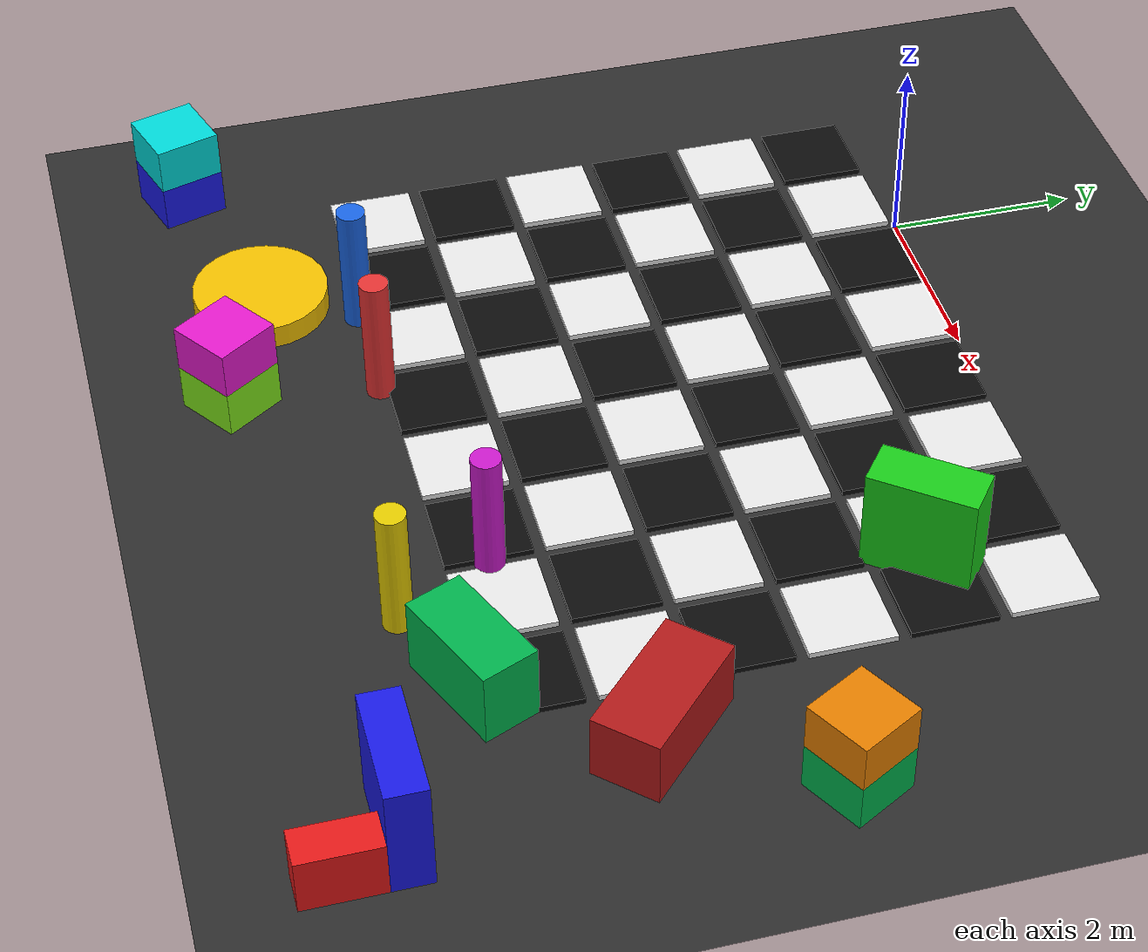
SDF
<sdf version="1.9">
 <world name="slam_world_realistic">
  <model name="ground_plane">
   <static>true</static>
   <link name="ground_link">
    <collision name="collision">
     <geometry><plane><normal>0 0 1</normal><size>80 80</size></plane></geometry>
    </collision>
    <visual name="visual">
     <geometry><plane><normal>0 0 1</normal><size>80 80</size></plane></geometry>
     <material>
      <ambient>0.15 0.15 0.15 1</ambient>
      <diffuse>0.18 0.18 0.18 1</diffuse>
      <specular>0.02 0.02 0.02 1</specular>
     </material>
    </visual>
   </link>
  </model>
  <model name="cb_48">
   <static>true</static>
   <pose>-1.500 -5.500 0.03 0 0 0</pose>
   <link name="link">
    <collision name="col"><geometry><box><size>0.88 0.88 0.06</size></box></geometry></collision>
    <visual name="vis">
     <geometry><box><size>0.88 0.88 0.06</size></box></geometry>
     <material>
      <ambient>0.910 0.910 0.910 1</ambient>
      <diffuse>0.910 0.910 0.910 1</diffuse>
      <specular>0.080 0.080 0.080 1</specular>
     </material>
    </visual>
   </link>
  </model>
  <model name="cb_49">
   <static>true</static>
   <pose>-1.500 -4.500 0.03 0 0 0</pose>
   <link name="link">
    <collision name="col"><geometry><box><size>0.88 0.88 0.06</size></box></geometry></collision>
    <visual name="vis">
     <geometry><box><size>0.88 0.88 0.06</size></box></geometry>
     <material>
      <ambient>0.050 0.050 0.050 1</ambient>
      <diffuse>0.050 0.050 0.050 1</diffuse>
      <specular>0.020 0.020 0.020 1</specular>
     </material>
    </visual>
   </link>
  </model>
  <model name="cb_50">
   <static>true</static>
   <pose>-1.500 -3.500 0.03 0 0 0</pose>
   <link name="link">
    <collision name="col"><geometry><box><size>0.88 0.88 0.06</size></box></geometry></collision>
    <visual name="vis">
     <geometry><box><size>0.88 0.88 0.06</size></box></geometry>
     <material>
      <ambient>0.910 0.910 0.910 1</ambient>
      <diffuse>0.910 0.910 0.910 1</diffuse>
      <specular>0.080 0.080 0.080 1</specular>
     </material>
    </visual>
   </link>
  </model>
  <model name="cb_51">
   <static>true</static>
   <pose>-1.500 -2.500 0.03 0 0 0</pose>
   <link name="link">
    <collision name="col"><geometry><box><size>0.88 0.88 0.06</size></box></geometry></collision>
    <visual name="vis">
     <geometry><box><size>0.88 0.88 0.06</size></box></geometry>
     <material>
      <ambient>0.050 0.050 0.050 1</ambient>
      <diffuse>0.050 0.050 0.050 1</diffuse>
      <specular>0.020 0.020 0.020 1</specular>
     </material>
    </visual>
   </link>
  </model>
  <model name="cb_52">
   <static>true</static>
   <pose>-1.500 -1.500 0.03 0 0 0</pose>
   <link name="link">
    <collision name="col"><geometry><box><size>0.88 0.88 0.06</size></box></geometry></collision>
    <visual name="vis">
     <geometry><box><size>0.88 0.88 0.06</size></box></geometry>
     <material>
      <ambient>0.910 0.910 0.910 1</ambient>
      <diffuse>0.910 0.910 0.910 1</diffuse>
      <specular>0.080 0.080 0.080 1</specular>
     </material>
    </visual>
   </link>
  </model>
  <model name="cb_53">
   <static>true</static>
   <pose>-1.500 -0.500 0.03 0 0 0</pose>
   <link name="link">
    <collision name="col"><geometry><box><size>0.88 0.88 0.06</size></box></geometry></collision>
    <visual name="vis">
     <geometry><box><size>0.88 0.88 0.06</size></box></geometry>
     <material>
      <ambient>0.050 0.050 0.050 1</ambient>
      <diffuse>0.050 0.050 0.050 1</diffuse>
      <specular>0.020 0.020 0.020 1</specular>
     </material>
    </visual>
   </link>
  </model>
  <model name="cb_60">
   <static>true</static>
   <pose>-0.500 -5.500 0.03 0 0 0</pose>
   <link name="link">
    <collision name="col"><geometry><box><size>0.88 0.88 0.06</size></box></geometry></collision>
    <visual name="vis">
     <geometry><box><size>0.88 0.88 0.06</size></box></geometry>
     <material>
      <ambient>0.050 0.050 0.050 1</ambient>
      <diffuse>0.050 0.050 0.050 1</diffuse>
      <specular>0.020 0.020 0.020 1</specular>
     </material>
    </visual>
   </link>
  </model>
  <model name="cb_61">
   <static>true</static>
   <pose>-0.500 -4.500 0.03 0 0 0</pose>
   <link name="link">
    <collision name="col"><geometry><box><size>0.88 0.88 0.06</size></box></geometry></collision>
    <visual name="vis">
     <geometry><box><size>0.88 0.88 0.06</size></box></geometry>
     <material>
      <ambient>0.910 0.910 0.910 1</ambient>
      <diffuse>0.910 0.910 0.910 1</diffuse>
      <specular>0.080 0.080 0.080 1</specular>
     </material>
    </visual>
   </link>
  </model>
  <model name="cb_62">
   <static>true</static>
   <pose>-0.500 -3.500 0.03 0 0 0</pose>
   <link name="link">
    <collision name="col"><geometry><box><size>0.88 0.88 0.06</size></box></geometry></collision>
    <visual name="vis">
     <geometry><box><size>0.88 0.88 0.06</size></box></geometry>
     <material>
      <ambient>0.050 0.050 0.050 1</ambient>
      <diffuse>0.050 0.050 0.050 1</diffuse>
      <specular>0.020 0.020 0.020 1</specular>
     </material>
    </visual>
   </link>
  </model>
  <model name="cb_63">
   <static>true</static>
   <pose>-0.500 -2.500 0.03 0 0 0</pose>
   <link name="link">
    <collision name="col"><geometry><box><size>0.88 0.88 0.06</size></box></geometry></collision>
    <visual name="vis">
     <geometry><box><size>0.88 0.88 0.06</size></box></geometry>
     <material>
      <ambient>0.910 0.910 0.910 1</ambient>
      <diffuse>0.910 0.910 0.910 1</diffuse>
      <specular>0.080 0.080 0.080 1</specular>
     </material>
    </visual>
   </link>
  </model>
  <model name="cb_64">
   <static>true</static>
   <pose>-0.500 -1.500 0.03 0 0 0</pose>
   <link name="link">
    <collision name="col"><geometry><box><size>0.88 0.88 0.06</size></box></geometry></collision>
    <visual name="vis">
     <geometry><box><size>0.88 0.88 0.06</size></box></geometry>
     <material>
      <ambient>0.050 0.050 0.050 1</ambient>
      <diffuse>0.050 0.050 0.050 1</diffuse>
      <specular>0.020 0.020 0.020 1</specular>
     </material>
    </visual>
   </link>
  </model>
  <model name="cb_65">
   <static>true</static>
   <pose>-0.500 -0.500 0.03 0 0 0</pose>
   <link name="link">
    <collision name="col"><geometry><box><size>0.88 0.88 0.06</size></box></geometry></collision>
    <visual name="vis">
     <geometry><box><size>0.88 0.88 0.06</size></box></geometry>
     <material>
      <ambient>0.910 0.910 0.910 1</ambient>
      <diffuse>0.910 0.910 0.910 1</diffuse>
      <specular>0.080 0.080 0.080 1</specular>
     </material>
    </visual>
   </link>
  </model>
  <model name="cb_72">
   <static>true</static>
   <pose>0.500 -5.500 0.03 0 0 0</pose>
   <link name="link">
    <collision name="col"><geometry><box><size>0.88 0.88 0.06</size></box></geometry></collision>
    <visual name="vis">
     <geometry><box><size>0.88 0.88 0.06</size></box></geometry>
     <material>
      <ambient>0.910 0.910 0.910 1</ambient>
      <diffuse>0.910 0.910 0.910 1</diffuse>
      <specular>0.080 0.080 0.080 1</specular>
     </material>
    </visual>
   </link>
  </model>
  <model name="cb_73">
   <static>true</static>
   <pose>0.500 -4.500 0.03 0 0 0</pose>
   <link name="link">
    <collision name="col"><geometry><box><size>0.88 0.88 0.06</size></box></geometry></collision>
    <visual name="vis">
     <geometry><box><size>0.88 0.88 0.06</size></box></geometry>
     <material>
      <ambient>0.050 0.050 0.050 1</ambient>
      <diffuse>0.050 0.050 0.050 1</diffuse>
      <specular>0.020 0.020 0.020 1</specular>
     </material>
    </visual>
   </link>
  </model>
  <model name="cb_74">
   <static>true</static>
   <pose>0.500 -3.500 0.03 0 0 0</pose>
   <link name="link">
    <collision name="col"><geometry><box><size>0.88 0.88 0.06</size></box></geometry></collision>
    <visual name="vis">
     <geometry><box><size>0.88 0.88 0.06</size></box></geometry>
     <material>
      <ambient>0.910 0.910 0.910 1</ambient>
      <diffuse>0.910 0.910 0.910 1</diffuse>
      <specular>0.080 0.080 0.080 1</specular>
     </material>
    </visual>
   </link>
  </model>
  <model name="cb_75">
   <static>true</static>
   <pose>0.500 -2.500 0.03 0 0 0</pose>
   <link name="link">
    <collision name="col"><geometry><box><size>0.88 0.88 0.06</size></box></geometry></collision>
    <visual name="vis">
     <geometry><box><size>0.88 0.88 0.06</size></box></geometry>
     <material>
      <ambient>0.050 0.050 0.050 1</ambient>
      <diffuse>0.050 0.050 0.050 1</diffuse>
      <specular>0.020 0.020 0.020 1</specular>
     </material>
    </visual>
   </link>
  </model>
  <model name="cb_76">
   <static>true</static>
   <pose>0.500 -1.500 0.03 0 0 0</pose>
   <link name="link">
    <collision name="col"><geometry><box><size>0.88 0.88 0.06</size></box></geometry></collision>
    <visual name="vis">
     <geometry><box><size>0.88 0.88 0.06</size></box></geometry>
     <material>
      <ambient>0.910 0.910 0.910 1</ambient>
      <diffuse>0.910 0.910 0.910 1</diffuse>
      <specular>0.080 0.080 0.080 1</specular>
     </material>
    </visual>
   </link>
  </model>
  <model name="cb_77">
   <static>true</static>
   <pose>0.500 -0.500 0.03 0 0 0</pose>
   <link name="link">
    <collision name="col"><geometry><box><size>0.88 0.88 0.06</size></box></geometry></collision>
    <visual name="vis">
     <geometry><box><size>0.88 0.88 0.06</size></box></geometry>
     <material>
      <ambient>0.050 0.050 0.050 1</ambient>
      <diffuse>0.050 0.050 0.050 1</diffuse>
      <specular>0.020 0.020 0.020 1</specular>
     </material>
    </visual>
   </link>
  </model>
  <model name="cb_84">
   <static>true</static>
   <pose>1.500 -5.500 0.03 0 0 0</pose>
   <link name="link">
    <collision name="col"><geometry><box><size>0.88 0.88 0.06</size></box></geometry></collision>
    <visual name="vis">
     <geometry><box><size>0.88 0.88 0.06</size></box></geometry>
     <material>
      <ambient>0.050 0.050 0.050 1</ambient>
      <diffuse>0.050 0.050 0.050 1</diffuse>
      <specular>0.020 0.020 0.020 1</specular>
     </material>
    </visual>
   </link>
  </model>
  <model name="cb_85">
   <static>true</static>
   <pose>1.500 -4.500 0.03 0 0 0</pose>
   <link name="link">
    <collision name="col"><geometry><box><size>0.88 0.88 0.06</size></box></geometry></collision>
    <visual name="vis">
     <geometry><box><size>0.88 0.88 0.06</size></box></geometry>
     <material>
      <ambient>0.910 0.910 0.910 1</ambient>
      <diffuse>0.910 0.910 0.910 1</diffuse>
      <specular>0.080 0.080 0.080 1</specular>
     </material>
    </visual>
   </link>
  </model>
  <model name="cb_86">
   <static>true</static>
   <pose>1.500 -3.500 0.03 0 0 0</pose>
   <link name="link">
    <collision name="col"><geometry><box><size>0.88 0.88 0.06</size></box></geometry></collision>
    <visual name="vis">
     <geometry><box><size>0.88 0.88 0.06</size></box></geometry>
     <material>
      <ambient>0.050 0.050 0.050 1</ambient>
      <diffuse>0.050 0.050 0.050 1</diffuse>
      <specular>0.020 0.020 0.020 1</specular>
     </material>
    </visual>
   </link>
  </model>
  <model name="cb_87">
   <static>true</static>
   <pose>1.500 -2.500 0.03 0 0 0</pose>
   <link name="link">
    <collision name="col"><geometry><box><size>0.88 0.88 0.06</size></box></geometry></collision>
    <visual name="vis">
     <geometry><box><size>0.88 0.88 0.06</size></box></geometry>
     <material>
      <ambient>0.910 0.910 0.910 1</ambient>
      <diffuse>0.910 0.910 0.910 1</diffuse>
      <specular>0.080 0.080 0.080 1</specular>
     </material>
    </visual>
   </link>
  </model>
  <model name="cb_88">
   <static>true</static>
   <pose>1.500 -1.500 0.03 0 0 0</pose>
   <link name="link">
    <collision name="col"><geometry><box><size>0.88 0.88 0.06</size></box></geometry></collision>
    <visual name="vis">
     <geometry><box><size>0.88 0.88 0.06</size></box></geometry>
     <material>
      <ambient>0.050 0.050 0.050 1</ambient>
      <diffuse>0.050 0.050 0.050 1</diffuse>
      <specular>0.020 0.020 0.020 1</specular>
     </material>
    </visual>
   </link>
  </model>
  <model name="cb_89">
   <static>true</static>
   <pose>1.500 -0.500 0.03 0 0 0</pose>
   <link name="link">
    <collision name="col"><geometry><box><size>0.88 0.88 0.06</size></box></geometry></collision>
    <visual name="vis">
     <geometry><box><size>0.88 0.88 0.06</size></box></geometry>
     <material>
      <ambient>0.910 0.910 0.910 1</ambient>
      <diffuse>0.910 0.910 0.910 1</diffuse>
      <specular>0.080 0.080 0.080 1</specular>
     </material>
    </visual>
   </link>
  </model>
  <model name="cb_96">
   <static>true</static>
   <pose>2.500 -5.500 0.03 0 0 0</pose>
   <link name="link">
    <collision name="col"><geometry><box><size>0.88 0.88 0.06</size></box></geometry></collision>
    <visual name="vis">
     <geometry><box><size>0.88 0.88 0.06</size></box></geometry>
     <material>
      <ambient>0.910 0.910 0.910 1</ambient>
      <diffuse>0.910 0.910 0.910 1</diffuse>
      <specular>0.080 0.080 0.080 1</specular>
     </material>
    </visual>
   </link>
  </model>
  <model name="cb_97">
   <static>true</static>
   <pose>2.500 -4.500 0.03 0 0 0</pose>
   <link name="link">
    <collision name="col"><geometry><box><size>0.88 0.88 0.06</size></box></geometry></collision>
    <visual name="vis">
     <geometry><box><size>0.88 0.88 0.06</size></box></geometry>
     <material>
      <ambient>0.050 0.050 0.050 1</ambient>
      <diffuse>0.050 0.050 0.050 1</diffuse>
      <specular>0.020 0.020 0.020 1</specular>
     </material>
    </visual>
   </link>
  </model>
  <model name="cb_98">
   <static>true</static>
   <pose>2.500 -3.500 0.03 0 0 0</pose>
   <link name="link">
    <collision name="col"><geometry><box><size>0.88 0.88 0.06</size></box></geometry></collision>
    <visual name="vis">
     <geometry><box><size>0.88 0.88 0.06</size></box></geometry>
     <material>
      <ambient>0.910 0.910 0.910 1</ambient>
      <diffuse>0.910 0.910 0.910 1</diffuse>
      <specular>0.080 0.080 0.080 1</specular>
     </material>
    </visual>
   </link>
  </model>
  <model name="cb_99">
   <static>true</static>
   <pose>2.500 -2.500 0.03 0 0 0</pose>
   <link name="link">
    <collision name="col"><geometry><box><size>0.88 0.88 0.06</size></box></geometry></collision>
    <visual name="vis">
     <geometry><box><size>0.88 0.88 0.06</size></box></geometry>
     <material>
      <ambient>0.050 0.050 0.050 1</ambient>
      <diffuse>0.050 0.050 0.050 1</diffuse>
      <specular>0.020 0.020 0.020 1</specular>
     </material>
    </visual>
   </link>
  </model>
  <model name="cb_100">
   <static>true</static>
   <pose>2.500 -1.500 0.03 0 0 0</pose>
   <link name="link">
    <collision name="col"><geometry><box><size>0.88 0.88 0.06</size></box></geometry></collision>
    <visual name="vis">
     <geometry><box><size>0.88 0.88 0.06</size></box></geometry>
     <material>
      <ambient>0.910 0.910 0.910 1</ambient>
      <diffuse>0.910 0.910 0.910 1</diffuse>
      <specular>0.080 0.080 0.080 1</specular>
     </material>
    </visual>
   </link>
  </model>
  <model name="cb_101">
   <static>true</static>
   <pose>2.500 -0.500 0.03 0 0 0</pose>
   <link name="link">
    <collision name="col"><geometry><box><size>0.88 0.88 0.06</size></box></geometry></collision>
    <visual name="vis">
     <geometry><box><size>0.88 0.88 0.06</size></box></geometry>
     <material>
      <ambient>0.050 0.050 0.050 1</ambient>
      <diffuse>0.050 0.050 0.050 1</diffuse>
      <specular>0.020 0.020 0.020 1</specular>
     </material>
    </visual>
   </link>
  </model>
  <model name="cb_108">
   <static>true</static>
   <pose>3.500 -5.500 0.03 0 0 0</pose>
   <link name="link">
    <collision name="col"><geometry><box><size>0.88 0.88 0.06</size></box></geometry></collision>
    <visual name="vis">
     <geometry><box><size>0.88 0.88 0.06</size></box></geometry>
     <material>
      <ambient>0.050 0.050 0.050 1</ambient>
      <diffuse>0.050 0.050 0.050 1</diffuse>
      <specular>0.020 0.020 0.020 1</specular>
     </material>
    </visual>
   </link>
  </model>
  <model name="cb_109">
   <static>true</static>
   <pose>3.500 -4.500 0.03 0 0 0</pose>
   <link name="link">
    <collision name="col"><geometry><box><size>0.88 0.88 0.06</size></box></geometry></collision>
    <visual name="vis">
     <geometry><box><size>0.88 0.88 0.06</size></box></geometry>
     <material>
      <ambient>0.910 0.910 0.910 1</ambient>
      <diffuse>0.910 0.910 0.910 1</diffuse>
      <specular>0.080 0.080 0.080 1</specular>
     </material>
    </visual>
   </link>
  </model>
  <model name="cb_110">
   <static>true</static>
   <pose>3.500 -3.500 0.03 0 0 0</pose>
   <link name="link">
    <collision name="col"><geometry><box><size>0.88 0.88 0.06</size></box></geometry></collision>
    <visual name="vis">
     <geometry><box><size>0.88 0.88 0.06</size></box></geometry>
     <material>
      <ambient>0.050 0.050 0.050 1</ambient>
      <diffuse>0.050 0.050 0.050 1</diffuse>
      <specular>0.020 0.020 0.020 1</specular>
     </material>
    </visual>
   </link>
  </model>
  <model name="cb_111">
   <static>true</static>
   <pose>3.500 -2.500 0.03 0 0 0</pose>
   <link name="link">
    <collision name="col"><geometry><box><size>0.88 0.88 0.06</size></box></geometry></collision>
    <visual name="vis">
     <geometry><box><size>0.88 0.88 0.06</size></box></geometry>
     <material>
      <ambient>0.910 0.910 0.910 1</ambient>
      <diffuse>0.910 0.910 0.910 1</diffuse>
      <specular>0.080 0.080 0.080 1</specular>
     </material>
    </visual>
   </link>
  </model>
  <model name="cb_112">
   <static>true</static>
   <pose>3.500 -1.500 0.03 0 0 0</pose>
   <link name="link">
    <collision name="col"><geometry><box><size>0.88 0.88 0.06</size></box></geometry></collision>
    <visual name="vis">
     <geometry><box><size>0.88 0.88 0.06</size></box></geometry>
     <material>
      <ambient>0.050 0.050 0.050 1</ambient>
      <diffuse>0.050 0.050 0.050 1</diffuse>
      <specular>0.020 0.020 0.020 1</specular>
     </material>
    </visual>
   </link>
  </model>
  <model name="cb_113">
   <static>true</static>
   <pose>3.500 -0.500 0.03 0 0 0</pose>
   <link name="link">
    <collision name="col"><geometry><box><size>0.88 0.88 0.06</size></box></geometry></collision>
    <visual name="vis">
     <geometry><box><size>0.88 0.88 0.06</size></box></geometry>
     <material>
      <ambient>0.910 0.910 0.910 1</ambient>
      <diffuse>0.910 0.910 0.910 1</diffuse>
      <specular>0.080 0.080 0.080 1</specular>
     </material>
    </visual>
   </link>
  </model>
  <model name="cb_120">
   <static>true</static>
   <pose>4.500 -5.500 0.03 0 0 0</pose>
   <link name="link">
    <collision name="col"><geometry><box><size>0.88 0.88 0.06</size></box></geometry></collision>
    <visual name="vis">
     <geometry><box><size>0.88 0.88 0.06</size></box></geometry>
     <material>
      <ambient>0.910 0.910 0.910 1</ambient>
      <diffuse>0.910 0.910 0.910 1</diffuse>
      <specular>0.080 0.080 0.080 1</specular>
     </material>
    </visual>
   </link>
  </model>
  <model name="cb_121">
   <static>true</static>
   <pose>4.500 -4.500 0.03 0 0 0</pose>
   <link name="link">
    <collision name="col"><geometry><box><size>0.88 0.88 0.06</size></box></geometry></collision>
    <visual name="vis">
     <geometry><box><size>0.88 0.88 0.06</size></box></geometry>
     <material>
      <ambient>0.050 0.050 0.050 1</ambient>
      <diffuse>0.050 0.050 0.050 1</diffuse>
      <specular>0.020 0.020 0.020 1</specular>
     </material>
    </visual>
   </link>
  </model>
  <model name="cb_122">
   <static>true</static>
   <pose>4.500 -3.500 0.03 0 0 0</pose>
   <link name="link">
    <collision name="col"><geometry><box><size>0.88 0.88 0.06</size></box></geometry></collision>
    <visual name="vis">
     <geometry><box><size>0.88 0.88 0.06</size></box></geometry>
     <material>
      <ambient>0.910 0.910 0.910 1</ambient>
      <diffuse>0.910 0.910 0.910 1</diffuse>
      <specular>0.080 0.080 0.080 1</specular>
     </material>
    </visual>
   </link>
  </model>
  <model name="cb_123">
   <static>true</static>
   <pose>4.500 -2.500 0.03 0 0 0</pose>
   <link name="link">
    <collision name="col"><geometry><box><size>0.88 0.88 0.06</size></box></geometry></collision>
    <visual name="vis">
     <geometry><box><size>0.88 0.88 0.06</size></box></geometry>
     <material>
      <ambient>0.050 0.050 0.050 1</ambient>
      <diffuse>0.050 0.050 0.050 1</diffuse>
      <specular>0.020 0.020 0.020 1</specular>
     </material>
    </visual>
   </link>
  </model>
  <model name="cb_124">
   <static>true</static>
   <pose>4.500 -1.500 0.03 0 0 0</pose>
   <link name="link">
    <collision name="col"><geometry><box><size>0.88 0.88 0.06</size></box></geometry></collision>
    <visual name="vis">
     <geometry><box><size>0.88 0.88 0.06</size></box></geometry>
     <material>
      <ambient>0.910 0.910 0.910 1</ambient>
      <diffuse>0.910 0.910 0.910 1</diffuse>
      <specular>0.080 0.080 0.080 1</specular>
     </material>
    </visual>
   </link>
  </model>
  <model name="cb_125">
   <static>true</static>
   <pose>4.500 -0.500 0.03 0 0 0</pose>
   <link name="link">
    <collision name="col"><geometry><box><size>0.88 0.88 0.06</size></box></geometry></collision>
    <visual name="vis">
     <geometry><box><size>0.88 0.88 0.06</size></box></geometry>
     <material>
      <ambient>0.050 0.050 0.050 1</ambient>
      <diffuse>0.050 0.050 0.050 1</diffuse>
      <specular>0.020 0.020 0.020 1</specular>
     </material>
    </visual>
   </link>
  </model>
  <model name="cb_132">
   <static>true</static>
   <pose>5.500 -5.500 0.03 0 0 0</pose>
   <link name="link">
    <collision name="col"><geometry><box><size>0.88 0.88 0.06</size></box></geometry></collision>
    <visual name="vis">
     <geometry><box><size>0.88 0.88 0.06</size></box></geometry>
     <material>
      <ambient>0.050 0.050 0.050 1</ambient>
      <diffuse>0.050 0.050 0.050 1</diffuse>
      <specular>0.020 0.020 0.020 1</specular>
     </material>
    </visual>
   </link>
  </model>
  <model name="cb_133">
   <static>true</static>
   <pose>5.500 -4.500 0.03 0 0 0</pose>
   <link name="link">
    <collision name="col"><geometry><box><size>0.88 0.88 0.06</size></box></geometry></collision>
    <visual name="vis">
     <geometry><box><size>0.88 0.88 0.06</size></box></geometry>
     <material>
      <ambient>0.910 0.910 0.910 1</ambient>
      <diffuse>0.910 0.910 0.910 1</diffuse>
      <specular>0.080 0.080 0.080 1</specular>
     </material>
    </visual>
   </link>
  </model>
  <model name="cb_134">
   <static>true</static>
   <pose>5.500 -3.500 0.03 0 0 0</pose>
   <link name="link">
    <collision name="col"><geometry><box><size>0.88 0.88 0.06</size></box></geometry></collision>
    <visual name="vis">
     <geometry><box><size>0.88 0.88 0.06</size></box></geometry>
     <material>
      <ambient>0.050 0.050 0.050 1</ambient>
      <diffuse>0.050 0.050 0.050 1</diffuse>
      <specular>0.020 0.020 0.020 1</specular>
     </material>
    </visual>
   </link>
  </model>
  <model name="cb_135">
   <static>true</static>
   <pose>5.500 -2.500 0.03 0 0 0</pose>
   <link name="link">
    <collision name="col"><geometry><box><size>0.88 0.88 0.06</size></box></geometry></collision>
    <visual name="vis">
     <geometry><box><size>0.88 0.88 0.06</size></box></geometry>
     <material>
      <ambient>0.910 0.910 0.910 1</ambient>
      <diffuse>0.910 0.910 0.910 1</diffuse>
      <specular>0.080 0.080 0.080 1</specular>
     </material>
    </visual>
   </link>
  </model>
  <model name="cb_136">
   <static>true</static>
   <pose>5.500 -1.500 0.03 0 0 0</pose>
   <link name="link">
    <collision name="col"><geometry><box><size>0.88 0.88 0.06</size></box></geometry></collision>
    <visual name="vis">
     <geometry><box><size>0.88 0.88 0.06</size></box></geometry>
     <material>
      <ambient>0.050 0.050 0.050 1</ambient>
      <diffuse>0.050 0.050 0.050 1</diffuse>
      <specular>0.020 0.020 0.020 1</specular>
     </material>
    </visual>
   </link>
  </model>
  <model name="cb_137">
   <static>true</static>
   <pose>5.500 -0.500 0.03 0 0 0</pose>
   <link name="link">
    <collision name="col"><geometry><box><size>0.88 0.88 0.06</size></box></geometry></collision>
    <visual name="vis">
     <geometry><box><size>0.88 0.88 0.06</size></box></geometry>
     <material>
      <ambient>0.910 0.910 0.910 1</ambient>
      <diffuse>0.910 0.910 0.910 1</diffuse>
      <specular>0.080 0.080 0.080 1</specular>
     </material>
    </visual>
   </link>
  </model>
  <model name="pillar_2">
   <static>true</static>
   <pose>0.00 -6.00 0.70 0 0 0</pose>
   <link name="link">
    <collision name="col">
     <geometry><cylinder><radius>0.15</radius><length>1.4</length></cylinder></geometry>
    </collision>
    <visual name="vis">
     <geometry><cylinder><radius>0.15</radius><length>1.4</length></cylinder></geometry>
     <material>
      <ambient>0.10 0.40 0.90 1</ambient>
      <diffuse>0.10 0.40 0.90 1</diffuse>
      <specular>0.30 0.30 0.30 1</specular>
     </material>
    </visual>
   </link>
  </model>
  <model name="pillar_4">
   <static>true</static>
   <pose>4.00 -5.50 0.70 0 0 0</pose>
   <link name="link">
    <collision name="col">
     <geometry><cylinder><radius>0.15</radius><length>1.4</length></cylinder></geometry>
    </collision>
    <visual name="vis">
     <geometry><cylinder><radius>0.15</radius><length>1.4</length></cylinder></geometry>
     <material>
      <ambient>0.80 0.10 0.80 1</ambient>
      <diffuse>0.80 0.10 0.80 1</diffuse>
      <specular>0.35 0.35 0.35 1</specular>
     </material>
    </visual>
   </link>
  </model>
  <model name="pillar_6">
   <static>true</static>
   <pose>1.20 -6.00 0.70 0 0 0</pose>
   <link name="link">
    <collision name="col">
     <geometry><cylinder><radius>0.15</radius><length>1.4</length></cylinder></geometry>
    </collision>
    <visual name="vis">
     <geometry><cylinder><radius>0.15</radius><length>1.4</length></cylinder></geometry>
     <material>
      <ambient>0.90 0.20 0.20 1</ambient>
      <diffuse>0.90 0.20 0.20 1</diffuse>
      <specular>0.30 0.30 0.30 1</specular>
     </material>
    </visual>
   </link>
  </model>
  <model name="pillar_10">
   <static>true</static>
   <pose>4.50 -6.50 0.70 0 0 0</pose>
   <link name="link">
    <collision name="col">
     <geometry><cylinder><radius>0.15</radius><length>1.4</length></cylinder></geometry>
    </collision>
    <visual name="vis">
     <geometry><cylinder><radius>0.15</radius><length>1.4</length></cylinder></geometry>
     <material>
      <ambient>0.90 0.80 0.00 1</ambient>
      <diffuse>0.90 0.80 0.00 1</diffuse>
      <specular>0.30 0.30 0.30 1</specular>
     </material>
    </visual>
   </link>
  </model>
  <model name="fat_cyl_2">
   <static>true</static>
   <pose>0.00 -7.00 0.50 0 0 0</pose>
   <link name="link">
    <collision name="col">
     <geometry><cylinder><radius>0.7</radius><length>0.25</length></cylinder></geometry>
    </collision>
    <visual name="vis">
     <geometry><cylinder><radius>0.7</radius><length>0.25</length></cylinder></geometry>
     <material>
      <ambient>0.95 0.75 0.00 1</ambient>
      <diffuse>0.95 0.75 0.00 1</diffuse>
      <specular>0.30 0.30 0.30 1</specular>
     </material>
    </visual>
   </link>
  </model>
  <model name="mbox_2">
   <static>true</static>
   <pose>5.50 -6.00 0.40 0 0 0.40</pose>
   <link name="link">
    <collision name="col"><geometry><box><size>1.20 0.60 0.80</size></box></geometry></collision>
    <visual name="vis">
     <geometry><box><size>1.20 0.60 0.80</size></box></geometry>
     <material>
      <ambient>0.00 0.70 0.30 1</ambient>
      <diffuse>0.00 0.70 0.30 1</diffuse>
      <specular>0.15 0.15 0.15 1</specular>
     </material>
    </visual>
   </link>
  </model>
  <model name="mbox_5">
   <static>true</static>
   <pose>6.50 -4.50 0.35 0 0 0.80</pose>
   <link name="link">
    <collision name="col"><geometry><box><size>0.70 1.40 0.70</size></box></geometry></collision>
    <visual name="vis">
     <geometry><box><size>0.70 1.40 0.70</size></box></geometry>
     <material>
      <ambient>0.70 0.10 0.10 1</ambient>
      <diffuse>0.70 0.10 0.10 1</diffuse>
      <specular>0.15 0.15 0.15 1</specular>
     </material>
    </visual>
   </link>
  </model>
  <model name="mbox_7">
   <static>true</static>
   <pose>5.00 -1.50 0.55 0 0 0.90</pose>
   <link name="link">
    <collision name="col"><geometry><box><size>1.10 0.50 1.10</size></box></geometry></collision>
    <visual name="vis">
     <geometry><box><size>1.10 0.50 1.10</size></box></geometry>
     <material>
      <ambient>0.10 0.80 0.10 1</ambient>
      <diffuse>0.10 0.80 0.10 1</diffuse>
      <specular>0.15 0.15 0.15 1</specular>
     </material>
    </visual>
   </link>
  </model>
  <model name="stripe_lo_1">
   <static>true</static>
   <pose>-2.50 -7.50 0.25 0 0 0.30</pose>
   <link name="link">
    <collision name="col"><geometry><box><size>0.70 0.70 0.50</size></box></geometry></collision>
    <visual name="vis">
     <geometry><box><size>0.70 0.70 0.50</size></box></geometry>
     <material>
      <ambient>0.10 0.10 0.90 1</ambient>
      <diffuse>0.10 0.10 0.90 1</diffuse>
      <specular>0.30 0.30 0.30 1</specular>
     </material>
    </visual>
   </link>
  </model>
  <model name="stripe_hi_1">
   <static>true</static>
   <pose>-2.50 -7.50 0.75 0 0 0.30</pose>
   <link name="link">
    <collision name="col"><geometry><box><size>0.70 0.70 0.50</size></box></geometry></collision>
    <visual name="vis">
     <geometry><box><size>0.70 0.70 0.50</size></box></geometry>
     <material>
      <ambient>0.00 0.85 0.85 1</ambient>
      <diffuse>0.00 0.85 0.85 1</diffuse>
      <specular>0.30 0.30 0.30 1</specular>
     </material>
    </visual>
   </link>
  </model>
  <model name="stripe_lo_2">
   <static>true</static>
   <pose>7.50 -3.00 0.25 0 0 0.50</pose>
   <link name="link">
    <collision name="col"><geometry><box><size>0.70 0.70 0.50</size></box></geometry></collision>
    <visual name="vis">
     <geometry><box><size>0.70 0.70 0.50</size></box></geometry>
     <material>
      <ambient>0.00 0.70 0.30 1</ambient>
      <diffuse>0.00 0.70 0.30 1</diffuse>
      <specular>0.30 0.30 0.30 1</specular>
     </material>
    </visual>
   </link>
  </model>
  <model name="stripe_hi_2">
   <static>true</static>
   <pose>7.50 -3.00 0.75 0 0 0.50</pose>
   <link name="link">
    <collision name="col"><geometry><box><size>0.70 0.70 0.50</size></box></geometry></collision>
    <visual name="vis">
     <geometry><box><size>0.70 0.70 0.50</size></box></geometry>
     <material>
      <ambient>0.90 0.50 0.00 1</ambient>
      <diffuse>0.90 0.50 0.00 1</diffuse>
      <specular>0.30 0.30 0.30 1</specular>
     </material>
    </visual>
   </link>
  </model>
  <model name="stripe_lo_6">
   <static>true</static>
   <pose>1.00 -7.50 0.25 0 0 0.60</pose>
   <link name="link">
    <collision name="col"><geometry><box><size>0.70 0.70 0.50</size></box></geometry></collision>
    <visual name="vis">
     <geometry><box><size>0.70 0.70 0.50</size></box></geometry>
     <material>
      <ambient>0.50 0.90 0.10 1</ambient>
      <diffuse>0.50 0.90 0.10 1</diffuse>
      <specular>0.30 0.30 0.30 1</specular>
     </material>
    </visual>
   </link>
  </model>
  <model name="stripe_hi_6">
   <static>true</static>
   <pose>1.00 -7.50 0.75 0 0 0.60</pose>
   <link name="link">
    <collision name="col"><geometry><box><size>0.70 0.70 0.50</size></box></geometry></collision>
    <visual name="vis">
     <geometry><box><size>0.70 0.70 0.50</size></box></geometry>
     <material>
      <ambient>0.90 0.10 0.80 1</ambient>
      <diffuse>0.90 0.10 0.80 1</diffuse>
      <specular>0.30 0.30 0.30 1</specular>
     </material>
    </visual>
   </link>
  </model>
  <model name="corner_a_2">
   <static>true</static>
   <pose>7.00 -7.00 0.60 0 0 0.00</pose>
   <link name="link">
    <collision name="col"><geometry><box><size>1.20 0.40 1.20</size></box></geometry></collision>
    <visual name="vis">
     <geometry><box><size>1.20 0.40 1.20</size></box></geometry>
     <material>
      <ambient>0.10 0.10 0.90 1</ambient>
      <diffuse>0.10 0.10 0.90 1</diffuse>
      <specular>0.15 0.15 0.15 1</specular>
     </material>
    </visual>
   </link>
  </model>
  <model name="corner_b_2">
   <static>true</static>
   <pose>7.40 -7.40 0.30 0 0 0.00</pose>
   <link name="link">
    <collision name="col"><geometry><box><size>0.40 1.20 0.60</size></box></geometry></collision>
    <visual name="vis">
     <geometry><box><size>0.40 1.20 0.60</size></box></geometry>
     <material>
      <ambient>0.90 0.10 0.10 1</ambient>
      <diffuse>0.90 0.10 0.10 1</diffuse>
      <specular>0.15 0.15 0.15 1</specular>
     </material>
    </visual>
   </link>
  </model>
  <model name="down_cam_rig">
   <static>true</static>
   <pose>0 0 4 0 0 0</pose>
   <link name="cam_link">
    <pose>0 0 0 0 1.5708 0</pose>
    <sensor name="down_camera" type="camera">
     <always_on>true</always_on>
     <update_rate>15</update_rate>
     <visualize>false</visualize>
     <camera>
      <horizontal_fov>1.2217</horizontal_fov>
      <image><width>640</width><height>480</height><format>R8G8B8</format></image>
      <clip><near>0.05</near><far>50</far></clip>
      <noise><type>gaussian</type><mean>0.0</mean><stddev>0.010</stddev></noise>
     </camera>
     <topic>/down_camera</topic>
    </sensor>
   </link>
  </model>
 </world>
</sdf>
